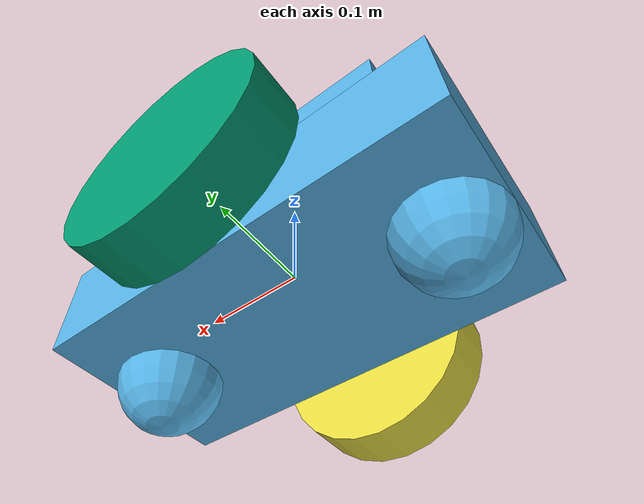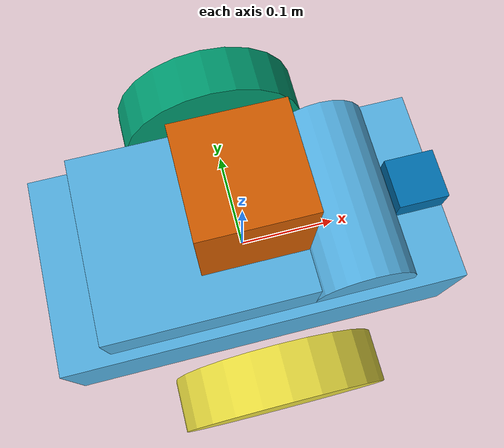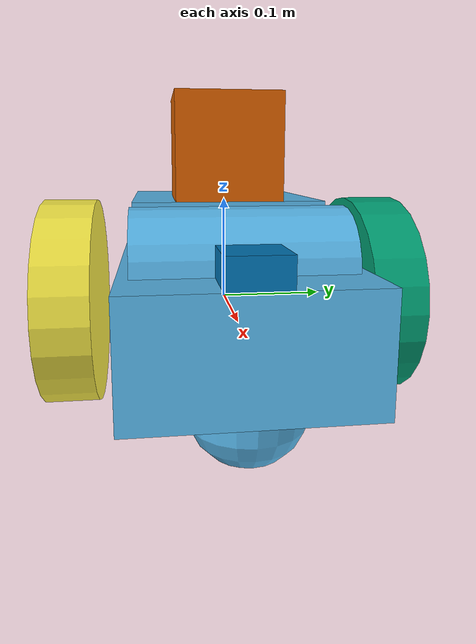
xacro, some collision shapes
<?xml version='1.0'?>

<robot name="udacity_bot" xmlns:xacro="http://www.ros.org/wiki/xacro">

  <xacro:include filename="$(find udacity_bot)/urdf/AN_bot.gazebo" />

  <link name="robot_footprint"></link>

  <joint name="robot_footprint_joint" type="fixed">
    <origin xyz="0 0 0" rpy="0 0 0" />
    <parent link="robot_footprint"/>
    <child link="chassis" />
  </joint>

  <link name='chassis'>
    <pose>0 0 0.1 0 0 0</pose>
    <inertial>
      <mass value="15.0"/>
      <origin xyz="0.0 0 0" rpy=" 0 0 0"/>
      <inertia
          ixx="0.1" ixy="0" ixz="0"
          iyy="0.1" iyz="0"
          izz="0.1"
      />
    </inertial>
    <collision name='collision'>
      <origin xyz="0 0 0" rpy=" 0 0 0"/>
      <geometry>
        <box size=".4 .2 .1"/>
      </geometry>
    </collision>
    <visual name='chassis_visual'>
      <origin xyz="0 0 0" rpy=" 0 0 0"/>
      <geometry>
        <box size=".4 .2 .1"/>
      </geometry>
    </visual>

    <collision name='cabinet_collision'>
      <origin xyz="0.1 0 0.05" rpy=" 0 1.5707 1.5707"/>
      <geometry>
        <cylinder radius=".05" length="0.18"/>
      </geometry>
    </collision>
    <visual name='cabinet_visual'>
      <origin xyz="0.1 0 0.05" rpy=" 0 1.5707 1.5707"/>
      <geometry>
        <cylinder radius=".05" length="0.18"/>
      </geometry>
    </visual>

    <collision name='tower_collision'>
      <origin xyz="-0.05 0 0.075" rpy=" 0 0 0"/>
      <geometry>
        <box size=".2 .18 .05"/>
      </geometry>
    </collision>
    <visual name='tower_visual'>
      <origin xyz="-0.05 0 0.075" rpy=" 0 0 0"/>
      <geometry>
        <box size=".2 .18 .05"/>
      </geometry>
    </visual>
    <collision name='back_caster_collision'>
      <origin xyz="-0.15 0 -0.05" rpy=" 0 0 0"/>
      <geometry>
        <sphere radius="0.0499"/>
      </geometry>
    </collision>
    <visual name='back_caster_visual'>
      <origin xyz="-0.15 0 -0.05" rpy=" 0 0 0"/>
      <geometry>
        <sphere radius="0.05"/>
      </geometry>
    </visual>
    <collision name='front_caster_collision'>
      <origin xyz="0.15 0 -0.05" rpy=" 0 0 0"/>
      <geometry>
        <sphere radius="0.0499"/>
      </geometry>
    </collision>
    <visual name='front_caster_visual'>
      <origin xyz="0.15 0 -0.05" rpy=" 0 0 0"/>
      <geometry>
        <sphere radius="0.05"/>
      </geometry>
    </visual>
  </link>

  <joint name="left_wheel_hinge" type="continuous">
    <origin xyz="0 0.15 0" rpy="0 0 0"/>
    <child link="left_wheel"/>
    <parent link="chassis"/>
    <axis xyz="0 1 0" rpy="0 0 0"/>
    <limit effort="10000" velocity="1000"/>
    <dynamics damping="1.0" friction="1.0"/>
  </joint>

  <link name='left_wheel'>
    <inertial>
        <mass value="5.0"/>
        <origin xyz="0.0 0 0" rpy="0 1.5707 1.5707"/>
        <inertia
            ixx="0.1" ixy="0" ixz="0"
            iyy="0.1" iyz="0"
            izz="0.1"
        />
    </inertial>
    <collision name='left_wheel_collision'>
      <origin xyz="0 0 0" rpy="0 1.5707 1.5707"/>
      <geometry>
        <cylinder length="0.05" radius="0.1"/>
      </geometry>
    </collision>
    <visual name='left_wheel_visual'>
      <origin xyz="0 0 0" rpy="0 1.5707 1.5707"/>
      <geometry>
        <cylinder length="0.05" radius="0.1"/>
      </geometry>
    </visual>
  </link>

  <joint name="right_wheel_hinge" type="continuous">
    <origin xyz="0 -0.15 0" rpy="0 0 0"/>
    <child link="right_wheel"/>
    <parent link="chassis"/>
    <axis xyz="0 1 0" rpy="0 0 0"/>
    <limit effort="10000" velocity="1000"/>
    <dynamics damping="1.0" friction="1.0"/>
  </joint>

  <link name='right_wheel'>
    <inertial>
        <mass value="5.0"/>
        <origin xyz="0.0 0 0" rpy="0 1.5707 1.5707"/>
        <inertia
            ixx="0.1" ixy="0" ixz="0"
            iyy="0.1" iyz="0"
            izz="0.1"
        />
    </inertial>
    <collision name='right_wheel_collision'>
      <origin xyz="0 0 0" rpy="0 1.5707 1.5707"/>
      <geometry>
        <cylinder length="0.05" radius="0.1"/>
      </geometry>
    </collision>
    <visual name='right_wheel_visual'>
      <origin xyz="0 0 0" rpy="0 1.5707 1.5707"/>
      <geometry>
        <cylinder length="0.05" radius="0.1"/>
      </geometry>
    </visual>
  </link>

  <joint name="camera_joint" type="fixed">
    <origin xyz="0.175 0 0.05" rpy="0 0 0"/>
    <child link="camera"/>
    <parent link="chassis"/>
  </joint>

  <link name="camera">
	<inertial>
        <mass value="0.1"/>
        <origin xyz="0.0 0 0" rpy=" 0 0 0"/>
        <inertia
            ixx="1e-6" ixy="0" ixz="0"
            iyy="1e-6" iyz="0"
            izz="1e-6"
        />
    </inertial>
    <collision name='camera_collision'>
      <origin xyz="0 0 0" rpy=" 0 0 0"/>
      <geometry>
        <box size="0.05 0.05 0.05"/>
      </geometry>
    </collision>
    <visual name='camera_visual'>
      <origin xyz="0 0 0" rpy=" 0 0 0"/>
      <geometry>
        <box size="0.05 0.05 0.05"/>
      </geometry>
    </visual>
  </link>

  <joint name="hokuyo_joint" type="fixed">
    <origin xyz="0 0 0.15" rpy="0 0 0"/>
    <child link="hokuyo"/>
    <parent link="chassis"/>
  </joint>

  <link name="hokuyo">
	<inertial>
        <mass value="0.1"/>
        <origin xyz="0.0 0 0" rpy=" 0 0 0"/>
        <inertia
            ixx="1e-6" ixy="0" ixz="0"
            iyy="1e-6" iyz="0"
            izz="1e-6"
        />
    </inertial>
    <collision name='hokuyo'>
      <origin xyz="0 0 0" rpy=" 0 0 0"/>
      <geometry>
        <box size="0.1 0.1 0.1"/>
      </geometry>
    </collision>
    <visual name='hokuyo'>
      <origin xyz="0 0 0" rpy=" 0 0 0"/>
      <geometry>
        <mesh filename="package://udacity_bot/meshes/hokuyo.dae"/>
      </geometry>
    </visual>
  </link>
</robot>
